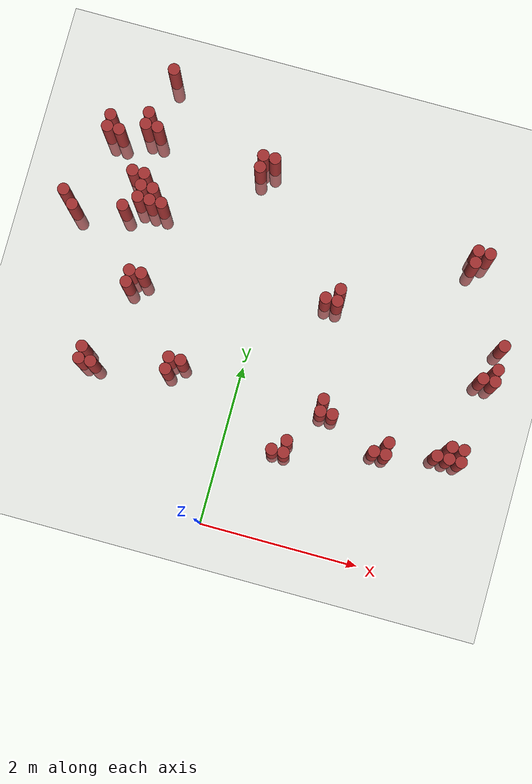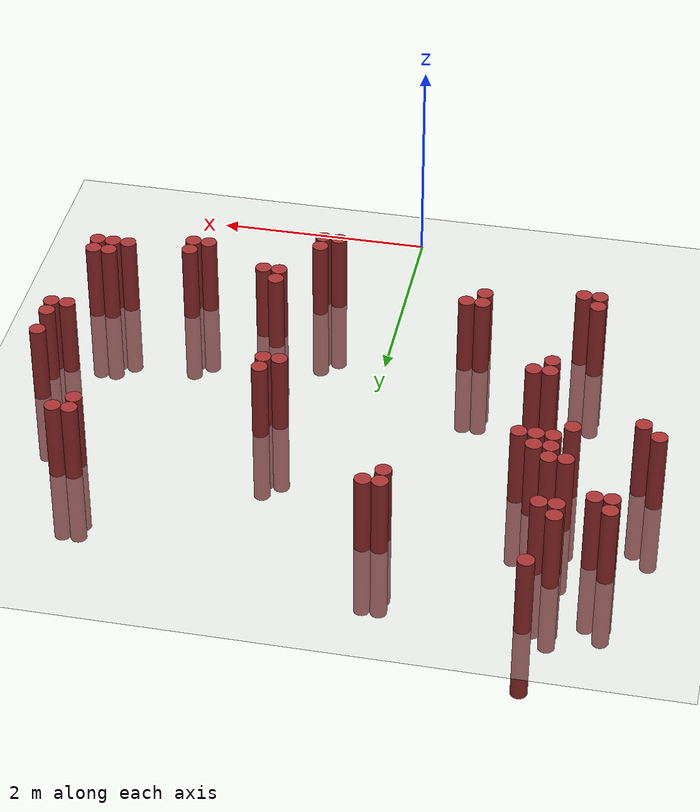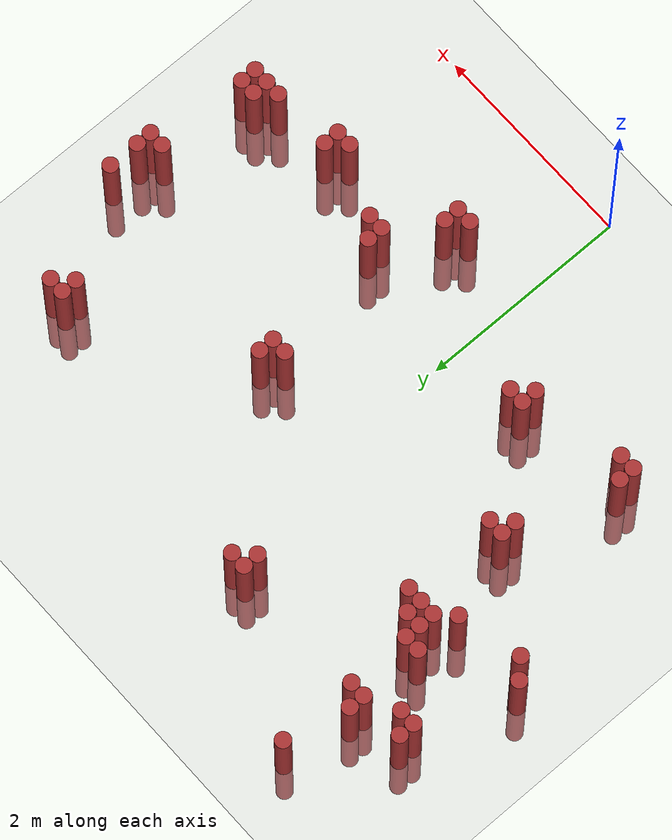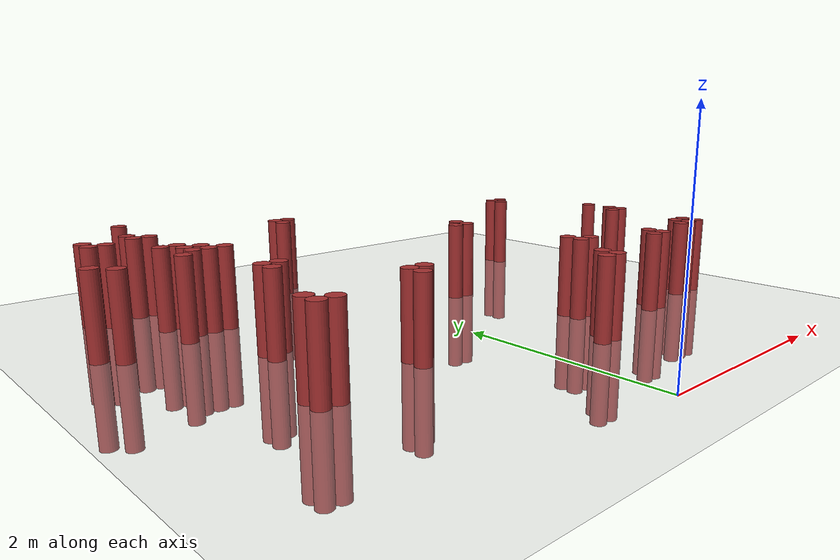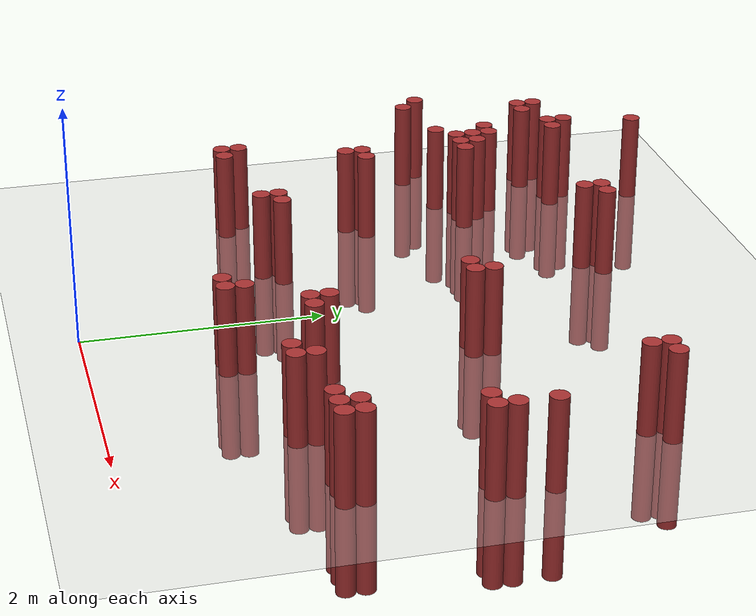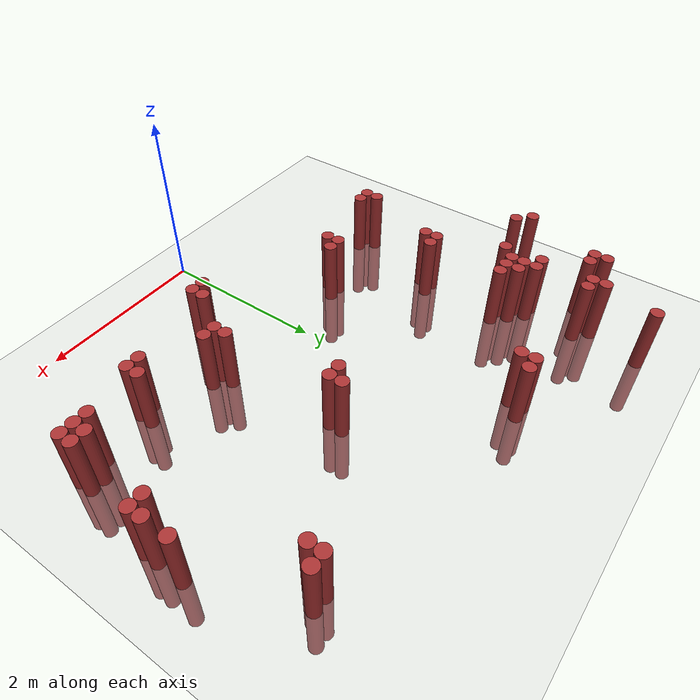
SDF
<sdf version="1.6">
 <world name="default">
  <model name="ground_plane">
   <static>1</static>
   <link name="link">
    <collision name="collision">
     <geometry><plane><normal>0 0 1</normal><size>100 100</size></plane></geometry>
     <surface><friction><ode><mu>100</mu><mu2>50</mu2></ode></friction></surface>
    </collision>
    <visual name="visual">
     <cast_shadows>0</cast_shadows>
     <geometry><plane><normal>0 0 1</normal><size>100 100</size></plane></geometry>
     <material>
      <script><uri>file://media/materials/scripts/gazebo.material</uri><name>Gazebo/Grey</name></script>
     </material>
    </visual>
   </link>
  </model>
  <model name="unit_cylinder_300">
   <static>1</static>
   <pose>-2.675000 3.475000 0.000000 0.000000 0.000000 0.000000</pose>
   <link name="link">
    <inertial>
     <mass>1</mass>
     <inertia><ixx>0.145833</ixx><ixy>0</ixy><ixz>0</ixz><iyy>0.145833</iyy><iyz>0</iyz><izz>0.125</izz></inertia>
    </inertial>
    <collision name="collision">
     <geometry><cylinder><radius>0.075000</radius><length>1.5</length></cylinder></geometry>
    </collision>
    <visual name="visual">
     <geometry><cylinder><radius>0.075000</radius><length>1.5</length></cylinder></geometry>
     <material>
      <ambient>0.648000 0.192000 0.192000 1</ambient>
      <diffuse>0.648000 0.192000 0.192000 1</diffuse>
     </material>
     <material>
      <script><name>Gazebo/Grey</name><uri>file://media/materials/scripts/gazebo.material</uri></script>
     </material>
    </visual>
   </link>
  </model>
  <model name="unit_cylinder_303">
   <static>1</static>
   <pose>-2.525000 3.325000 0.000000 0.000000 0.000000 0.000000</pose>
   <link name="link">
    <inertial>
     <mass>1</mass>
     <inertia><ixx>0.145833</ixx><ixy>0</ixy><ixz>0</ixz><iyy>0.145833</iyy><iyz>0</iyz><izz>0.125</izz></inertia>
    </inertial>
    <collision name="collision">
     <geometry><cylinder><radius>0.075000</radius><length>1.5</length></cylinder></geometry>
    </collision>
    <visual name="visual">
     <geometry><cylinder><radius>0.075000</radius><length>1.5</length></cylinder></geometry>
     <material>
      <ambient>0.648000 0.192000 0.192000 1</ambient>
      <diffuse>0.648000 0.192000 0.192000 1</diffuse>
     </material>
     <material>
      <script><name>Gazebo/Grey</name><uri>file://media/materials/scripts/gazebo.material</uri></script>
     </material>
    </visual>
   </link>
  </model>
  <model name="unit_cylinder_305">
   <static>1</static>
   <pose>-2.375000 4.375000 0.000000 0.000000 0.000000 0.000000</pose>
   <link name="link">
    <inertial>
     <mass>1</mass>
     <inertia><ixx>0.145833</ixx><ixy>0</ixy><ixz>0</ixz><iyy>0.145833</iyy><iyz>0</iyz><izz>0.125</izz></inertia>
    </inertial>
    <collision name="collision">
     <geometry><cylinder><radius>0.075000</radius><length>1.5</length></cylinder></geometry>
    </collision>
    <visual name="visual">
     <geometry><cylinder><radius>0.075000</radius><length>1.5</length></cylinder></geometry>
     <material>
      <ambient>0.648000 0.192000 0.192000 1</ambient>
      <diffuse>0.648000 0.192000 0.192000 1</diffuse>
     </material>
     <material>
      <script><name>Gazebo/Grey</name><uri>file://media/materials/scripts/gazebo.material</uri></script>
     </material>
    </visual>
   </link>
  </model>
  <model name="unit_cylinder_306">
   <static>1</static>
   <pose>-2.375000 4.525000 0.000000 0.000000 0.000000 0.000000</pose>
   <link name="link">
    <inertial>
     <mass>1</mass>
     <inertia><ixx>0.145833</ixx><ixy>0</ixy><ixz>0</ixz><iyy>0.145833</iyy><iyz>0</iyz><izz>0.125</izz></inertia>
    </inertial>
    <collision name="collision">
     <geometry><cylinder><radius>0.075000</radius><length>1.5</length></cylinder></geometry>
    </collision>
    <visual name="visual">
     <geometry><cylinder><radius>0.075000</radius><length>1.5</length></cylinder></geometry>
     <material>
      <ambient>0.648000 0.192000 0.192000 1</ambient>
      <diffuse>0.648000 0.192000 0.192000 1</diffuse>
     </material>
     <material>
      <script><name>Gazebo/Grey</name><uri>file://media/materials/scripts/gazebo.material</uri></script>
     </material>
    </visual>
   </link>
  </model>
  <model name="unit_cylinder_311">
   <static>1</static>
   <pose>-2.225000 4.375000 0.000000 0.000000 0.000000 0.000000</pose>
   <link name="link">
    <inertial>
     <mass>1</mass>
     <inertia><ixx>0.145833</ixx><ixy>0</ixy><ixz>0</ixz><iyy>0.145833</iyy><iyz>0</iyz><izz>0.125</izz></inertia>
    </inertial>
    <collision name="collision">
     <geometry><cylinder><radius>0.075000</radius><length>1.5</length></cylinder></geometry>
    </collision>
    <visual name="visual">
     <geometry><cylinder><radius>0.075000</radius><length>1.5</length></cylinder></geometry>
     <material>
      <ambient>0.648000 0.192000 0.192000 1</ambient>
      <diffuse>0.648000 0.192000 0.192000 1</diffuse>
     </material>
     <material>
      <script><name>Gazebo/Grey</name><uri>file://media/materials/scripts/gazebo.material</uri></script>
     </material>
    </visual>
   </link>
  </model>
  <model name="unit_cylinder_317">
   <static>1</static>
   <pose>-1.925000 1.525000 0.000000 0.000000 0.000000 0.000000</pose>
   <link name="link">
    <inertial>
     <mass>1</mass>
     <inertia><ixx>0.145833</ixx><ixy>0</ixy><ixz>0</ixz><iyy>0.145833</iyy><iyz>0</iyz><izz>0.125</izz></inertia>
    </inertial>
    <collision name="collision">
     <geometry><cylinder><radius>0.075000</radius><length>1.5</length></cylinder></geometry>
    </collision>
    <visual name="visual">
     <geometry><cylinder><radius>0.075000</radius><length>1.5</length></cylinder></geometry>
     <material>
      <ambient>0.648000 0.192000 0.192000 1</ambient>
      <diffuse>0.648000 0.192000 0.192000 1</diffuse>
     </material>
     <material>
      <script><name>Gazebo/Grey</name><uri>file://media/materials/scripts/gazebo.material</uri></script>
     </material>
    </visual>
   </link>
  </model>
  <model name="unit_cylinder_318">
   <static>1</static>
   <pose>-1.925000 1.675000 0.000000 0.000000 0.000000 0.000000</pose>
   <link name="link">
    <inertial>
     <mass>1</mass>
     <inertia><ixx>0.145833</ixx><ixy>0</ixy><ixz>0</ixz><iyy>0.145833</iyy><iyz>0</iyz><izz>0.125</izz></inertia>
    </inertial>
    <collision name="collision">
     <geometry><cylinder><radius>0.075000</radius><length>1.5</length></cylinder></geometry>
    </collision>
    <visual name="visual">
     <geometry><cylinder><radius>0.075000</radius><length>1.5</length></cylinder></geometry>
     <material>
      <ambient>0.648000 0.192000 0.192000 1</ambient>
      <diffuse>0.648000 0.192000 0.192000 1</diffuse>
     </material>
     <material>
      <script><name>Gazebo/Grey</name><uri>file://media/materials/scripts/gazebo.material</uri></script>
     </material>
    </visual>
   </link>
  </model>
  <model name="unit_cylinder_319">
   <static>1</static>
   <pose>-1.925000 3.475000 0.000000 0.000000 0.000000 0.000000</pose>
   <link name="link">
    <inertial>
     <mass>1</mass>
     <inertia><ixx>0.145833</ixx><ixy>0</ixy><ixz>0</ixz><iyy>0.145833</iyy><iyz>0</iyz><izz>0.125</izz></inertia>
    </inertial>
    <collision name="collision">
     <geometry><cylinder><radius>0.075000</radius><length>1.5</length></cylinder></geometry>
    </collision>
    <visual name="visual">
     <geometry><cylinder><radius>0.075000</radius><length>1.5</length></cylinder></geometry>
     <material>
      <ambient>0.648000 0.192000 0.192000 1</ambient>
      <diffuse>0.648000 0.192000 0.192000 1</diffuse>
     </material>
     <material>
      <script><name>Gazebo/Grey</name><uri>file://media/materials/scripts/gazebo.material</uri></script>
     </material>
    </visual>
   </link>
  </model>
  <model name="unit_cylinder_320">
   <static>1</static>
   <pose>-1.925000 3.925000 0.000000 0.000000 0.000000 0.000000</pose>
   <link name="link">
    <inertial>
     <mass>1</mass>
     <inertia><ixx>0.145833</ixx><ixy>0</ixy><ixz>0</ixz><iyy>0.145833</iyy><iyz>0</iyz><izz>0.125</izz></inertia>
    </inertial>
    <collision name="collision">
     <geometry><cylinder><radius>0.075000</radius><length>1.5</length></cylinder></geometry>
    </collision>
    <visual name="visual">
     <geometry><cylinder><radius>0.075000</radius><length>1.5</length></cylinder></geometry>
     <material>
      <ambient>0.648000 0.192000 0.192000 1</ambient>
      <diffuse>0.648000 0.192000 0.192000 1</diffuse>
     </material>
     <material>
      <script><name>Gazebo/Grey</name><uri>file://media/materials/scripts/gazebo.material</uri></script>
     </material>
    </visual>
   </link>
  </model>
  <model name="unit_cylinder_321">
   <static>1</static>
   <pose>-1.925000 4.525000 0.000000 0.000000 0.000000 0.000000</pose>
   <link name="link">
    <inertial>
     <mass>1</mass>
     <inertia><ixx>0.145833</ixx><ixy>0</ixy><ixz>0</ixz><iyy>0.145833</iyy><iyz>0</iyz><izz>0.125</izz></inertia>
    </inertial>
    <collision name="collision">
     <geometry><cylinder><radius>0.075000</radius><length>1.5</length></cylinder></geometry>
    </collision>
    <visual name="visual">
     <geometry><cylinder><radius>0.075000</radius><length>1.5</length></cylinder></geometry>
     <material>
      <ambient>0.648000 0.192000 0.192000 1</ambient>
      <diffuse>0.648000 0.192000 0.192000 1</diffuse>
     </material>
     <material>
      <script><name>Gazebo/Grey</name><uri>file://media/materials/scripts/gazebo.material</uri></script>
     </material>
    </visual>
   </link>
  </model>
  <model name="unit_cylinder_322">
   <static>1</static>
   <pose>-1.925000 4.675000 0.000000 0.000000 0.000000 0.000000</pose>
   <link name="link">
    <inertial>
     <mass>1</mass>
     <inertia><ixx>0.145833</ixx><ixy>0</ixy><ixz>0</ixz><iyy>0.145833</iyy><iyz>0</iyz><izz>0.125</izz></inertia>
    </inertial>
    <collision name="collision">
     <geometry><cylinder><radius>0.075000</radius><length>1.5</length></cylinder></geometry>
    </collision>
    <visual name="visual">
     <geometry><cylinder><radius>0.075000</radius><length>1.5</length></cylinder></geometry>
     <material>
      <ambient>0.648000 0.192000 0.192000 1</ambient>
      <diffuse>0.648000 0.192000 0.192000 1</diffuse>
     </material>
     <material>
      <script><name>Gazebo/Grey</name><uri>file://media/materials/scripts/gazebo.material</uri></script>
     </material>
    </visual>
   </link>
  </model>
  <model name="unit_cylinder_325">
   <static>1</static>
   <pose>-1.775000 1.525000 0.000000 0.000000 0.000000 0.000000</pose>
   <link name="link">
    <inertial>
     <mass>1</mass>
     <inertia><ixx>0.145833</ixx><ixy>0</ixy><ixz>0</ixz><iyy>0.145833</iyy><iyz>0</iyz><izz>0.125</izz></inertia>
    </inertial>
    <collision name="collision">
     <geometry><cylinder><radius>0.075000</radius><length>1.5</length></cylinder></geometry>
    </collision>
    <visual name="visual">
     <geometry><cylinder><radius>0.075000</radius><length>1.5</length></cylinder></geometry>
     <material>
      <ambient>0.648000 0.192000 0.192000 1</ambient>
      <diffuse>0.648000 0.192000 0.192000 1</diffuse>
     </material>
     <material>
      <script><name>Gazebo/Grey</name><uri>file://media/materials/scripts/gazebo.material</uri></script>
     </material>
    </visual>
   </link>
  </model>
  <model name="unit_cylinder_326">
   <static>1</static>
   <pose>-1.775000 3.625000 0.000000 0.000000 0.000000 0.000000</pose>
   <link name="link">
    <inertial>
     <mass>1</mass>
     <inertia><ixx>0.145833</ixx><ixy>0</ixy><ixz>0</ixz><iyy>0.145833</iyy><iyz>0</iyz><izz>0.125</izz></inertia>
    </inertial>
    <collision name="collision">
     <geometry><cylinder><radius>0.075000</radius><length>1.5</length></cylinder></geometry>
    </collision>
    <visual name="visual">
     <geometry><cylinder><radius>0.075000</radius><length>1.5</length></cylinder></geometry>
     <material>
      <ambient>0.648000 0.192000 0.192000 1</ambient>
      <diffuse>0.648000 0.192000 0.192000 1</diffuse>
     </material>
     <material>
      <script><name>Gazebo/Grey</name><uri>file://media/materials/scripts/gazebo.material</uri></script>
     </material>
    </visual>
   </link>
  </model>
  <model name="unit_cylinder_327">
   <static>1</static>
   <pose>-1.775000 3.775000 0.000000 0.000000 0.000000 0.000000</pose>
   <link name="link">
    <inertial>
     <mass>1</mass>
     <inertia><ixx>0.145833</ixx><ixy>0</ixy><ixz>0</ixz><iyy>0.145833</iyy><iyz>0</iyz><izz>0.125</izz></inertia>
    </inertial>
    <collision name="collision">
     <geometry><cylinder><radius>0.075000</radius><length>1.5</length></cylinder></geometry>
    </collision>
    <visual name="visual">
     <geometry><cylinder><radius>0.075000</radius><length>1.5</length></cylinder></geometry>
     <material>
      <ambient>0.648000 0.192000 0.192000 1</ambient>
      <diffuse>0.648000 0.192000 0.192000 1</diffuse>
     </material>
     <material>
      <script><name>Gazebo/Grey</name><uri>file://media/materials/scripts/gazebo.material</uri></script>
     </material>
    </visual>
   </link>
  </model>
  <model name="unit_cylinder_328">
   <static>1</static>
   <pose>-1.775000 3.925000 0.000000 0.000000 0.000000 0.000000</pose>
   <link name="link">
    <inertial>
     <mass>1</mass>
     <inertia><ixx>0.145833</ixx><ixy>0</ixy><ixz>0</ixz><iyy>0.145833</iyy><iyz>0</iyz><izz>0.125</izz></inertia>
    </inertial>
    <collision name="collision">
     <geometry><cylinder><radius>0.075000</radius><length>1.5</length></cylinder></geometry>
    </collision>
    <visual name="visual">
     <geometry><cylinder><radius>0.075000</radius><length>1.5</length></cylinder></geometry>
     <material>
      <ambient>0.648000 0.192000 0.192000 1</ambient>
      <diffuse>0.648000 0.192000 0.192000 1</diffuse>
     </material>
     <material>
      <script><name>Gazebo/Grey</name><uri>file://media/materials/scripts/gazebo.material</uri></script>
     </material>
    </visual>
   </link>
  </model>
  <model name="unit_cylinder_329">
   <static>1</static>
   <pose>-1.775000 4.525000 0.000000 0.000000 0.000000 0.000000</pose>
   <link name="link">
    <inertial>
     <mass>1</mass>
     <inertia><ixx>0.145833</ixx><ixy>0</ixy><ixz>0</ixz><iyy>0.145833</iyy><iyz>0</iyz><izz>0.125</izz></inertia>
    </inertial>
    <collision name="collision">
     <geometry><cylinder><radius>0.075000</radius><length>1.5</length></cylinder></geometry>
    </collision>
    <visual name="visual">
     <geometry><cylinder><radius>0.075000</radius><length>1.5</length></cylinder></geometry>
     <material>
      <ambient>0.648000 0.192000 0.192000 1</ambient>
      <diffuse>0.648000 0.192000 0.192000 1</diffuse>
     </material>
     <material>
      <script><name>Gazebo/Grey</name><uri>file://media/materials/scripts/gazebo.material</uri></script>
     </material>
    </visual>
   </link>
  </model>
  <model name="unit_cylinder_330">
   <static>1</static>
   <pose>-1.775000 5.275000 0.000000 0.000000 0.000000 0.000000</pose>
   <link name="link">
    <inertial>
     <mass>1</mass>
     <inertia><ixx>0.145833</ixx><ixy>0</ixy><ixz>0</ixz><iyy>0.145833</iyy><iyz>0</iyz><izz>0.125</izz></inertia>
    </inertial>
    <collision name="collision">
     <geometry><cylinder><radius>0.075000</radius><length>1.5</length></cylinder></geometry>
    </collision>
    <visual name="visual">
     <geometry><cylinder><radius>0.075000</radius><length>1.5</length></cylinder></geometry>
     <material>
      <ambient>0.648000 0.192000 0.192000 1</ambient>
      <diffuse>0.648000 0.192000 0.192000 1</diffuse>
     </material>
     <material>
      <script><name>Gazebo/Grey</name><uri>file://media/materials/scripts/gazebo.material</uri></script>
     </material>
    </visual>
   </link>
  </model>
  <model name="unit_cylinder_331">
   <static>1</static>
   <pose>-1.625000 2.575000 0.000000 0.000000 0.000000 0.000000</pose>
   <link name="link">
    <inertial>
     <mass>1</mass>
     <inertia><ixx>0.145833</ixx><ixy>0</ixy><ixz>0</ixz><iyy>0.145833</iyy><iyz>0</iyz><izz>0.125</izz></inertia>
    </inertial>
    <collision name="collision">
     <geometry><cylinder><radius>0.075000</radius><length>1.5</length></cylinder></geometry>
    </collision>
    <visual name="visual">
     <geometry><cylinder><radius>0.075000</radius><length>1.5</length></cylinder></geometry>
     <material>
      <ambient>0.648000 0.192000 0.192000 1</ambient>
      <diffuse>0.648000 0.192000 0.192000 1</diffuse>
     </material>
     <material>
      <script><name>Gazebo/Grey</name><uri>file://media/materials/scripts/gazebo.material</uri></script>
     </material>
    </visual>
   </link>
  </model>
  <model name="unit_cylinder_332">
   <static>1</static>
   <pose>-1.625000 2.725000 0.000000 0.000000 0.000000 0.000000</pose>
   <link name="link">
    <inertial>
     <mass>1</mass>
     <inertia><ixx>0.145833</ixx><ixy>0</ixy><ixz>0</ixz><iyy>0.145833</iyy><iyz>0</iyz><izz>0.125</izz></inertia>
    </inertial>
    <collision name="collision">
     <geometry><cylinder><radius>0.075000</radius><length>1.5</length></cylinder></geometry>
    </collision>
    <visual name="visual">
     <geometry><cylinder><radius>0.075000</radius><length>1.5</length></cylinder></geometry>
     <material>
      <ambient>0.648000 0.192000 0.192000 1</ambient>
      <diffuse>0.648000 0.192000 0.192000 1</diffuse>
     </material>
     <material>
      <script><name>Gazebo/Grey</name><uri>file://media/materials/scripts/gazebo.material</uri></script>
     </material>
    </visual>
   </link>
  </model>
  <model name="unit_cylinder_333">
   <static>1</static>
   <pose>-1.625000 3.625000 0.000000 0.000000 0.000000 0.000000</pose>
   <link name="link">
    <inertial>
     <mass>1</mass>
     <inertia><ixx>0.145833</ixx><ixy>0</ixy><ixz>0</ixz><iyy>0.145833</iyy><iyz>0</iyz><izz>0.125</izz></inertia>
    </inertial>
    <collision name="collision">
     <geometry><cylinder><radius>0.075000</radius><length>1.5</length></cylinder></geometry>
    </collision>
    <visual name="visual">
     <geometry><cylinder><radius>0.075000</radius><length>1.5</length></cylinder></geometry>
     <material>
      <ambient>0.648000 0.192000 0.192000 1</ambient>
      <diffuse>0.648000 0.192000 0.192000 1</diffuse>
     </material>
     <material>
      <script><name>Gazebo/Grey</name><uri>file://media/materials/scripts/gazebo.material</uri></script>
     </material>
    </visual>
   </link>
  </model>
  <model name="unit_cylinder_334">
   <static>1</static>
   <pose>-1.625000 3.775000 0.000000 0.000000 0.000000 0.000000</pose>
   <link name="link">
    <inertial>
     <mass>1</mass>
     <inertia><ixx>0.145833</ixx><ixy>0</ixy><ixz>0</ixz><iyy>0.145833</iyy><iyz>0</iyz><izz>0.125</izz></inertia>
    </inertial>
    <collision name="collision">
     <geometry><cylinder><radius>0.075000</radius><length>1.5</length></cylinder></geometry>
    </collision>
    <visual name="visual">
     <geometry><cylinder><radius>0.075000</radius><length>1.5</length></cylinder></geometry>
     <material>
      <ambient>0.648000 0.192000 0.192000 1</ambient>
      <diffuse>0.648000 0.192000 0.192000 1</diffuse>
     </material>
     <material>
      <script><name>Gazebo/Grey</name><uri>file://media/materials/scripts/gazebo.material</uri></script>
     </material>
    </visual>
   </link>
  </model>
  <model name="unit_cylinder_336">
   <static>1</static>
   <pose>-1.475000 2.725000 0.000000 0.000000 0.000000 0.000000</pose>
   <link name="link">
    <inertial>
     <mass>1</mass>
     <inertia><ixx>0.145833</ixx><ixy>0</ixy><ixz>0</ixz><iyy>0.145833</iyy><iyz>0</iyz><izz>0.125</izz></inertia>
    </inertial>
    <collision name="collision">
     <geometry><cylinder><radius>0.075000</radius><length>1.5</length></cylinder></geometry>
    </collision>
    <visual name="visual">
     <geometry><cylinder><radius>0.075000</radius><length>1.5</length></cylinder></geometry>
     <material>
      <ambient>0.648000 0.192000 0.192000 1</ambient>
      <diffuse>0.648000 0.192000 0.192000 1</diffuse>
     </material>
     <material>
      <script><name>Gazebo/Grey</name><uri>file://media/materials/scripts/gazebo.material</uri></script>
     </material>
    </visual>
   </link>
  </model>
  <model name="unit_cylinder_337">
   <static>1</static>
   <pose>-1.475000 3.625000 0.000000 0.000000 0.000000 0.000000</pose>
   <link name="link">
    <inertial>
     <mass>1</mass>
     <inertia><ixx>0.145833</ixx><ixy>0</ixy><ixz>0</ixz><iyy>0.145833</iyy><iyz>0</iyz><izz>0.125</izz></inertia>
    </inertial>
    <collision name="collision">
     <geometry><cylinder><radius>0.075000</radius><length>1.5</length></cylinder></geometry>
    </collision>
    <visual name="visual">
     <geometry><cylinder><radius>0.075000</radius><length>1.5</length></cylinder></geometry>
     <material>
      <ambient>0.648000 0.192000 0.192000 1</ambient>
      <diffuse>0.648000 0.192000 0.192000 1</diffuse>
     </material>
     <material>
      <script><name>Gazebo/Grey</name><uri>file://media/materials/scripts/gazebo.material</uri></script>
     </material>
    </visual>
   </link>
  </model>
  <model name="unit_cylinder_345">
   <static>1</static>
   <pose>-0.875000 1.675000 0.000000 0.000000 0.000000 0.000000</pose>
   <link name="link">
    <inertial>
     <mass>1</mass>
     <inertia><ixx>0.145833</ixx><ixy>0</ixy><ixz>0</ixz><iyy>0.145833</iyy><iyz>0</iyz><izz>0.125</izz></inertia>
    </inertial>
    <collision name="collision">
     <geometry><cylinder><radius>0.075000</radius><length>1.5</length></cylinder></geometry>
    </collision>
    <visual name="visual">
     <geometry><cylinder><radius>0.075000</radius><length>1.5</length></cylinder></geometry>
     <material>
      <ambient>0.648000 0.192000 0.192000 1</ambient>
      <diffuse>0.648000 0.192000 0.192000 1</diffuse>
     </material>
     <material>
      <script><name>Gazebo/Grey</name><uri>file://media/materials/scripts/gazebo.material</uri></script>
     </material>
    </visual>
   </link>
  </model>
  <model name="unit_cylinder_346">
   <static>1</static>
   <pose>-0.875000 1.825000 0.000000 0.000000 0.000000 0.000000</pose>
   <link name="link">
    <inertial>
     <mass>1</mass>
     <inertia><ixx>0.145833</ixx><ixy>0</ixy><ixz>0</ixz><iyy>0.145833</iyy><iyz>0</iyz><izz>0.125</izz></inertia>
    </inertial>
    <collision name="collision">
     <geometry><cylinder><radius>0.075000</radius><length>1.5</length></cylinder></geometry>
    </collision>
    <visual name="visual">
     <geometry><cylinder><radius>0.075000</radius><length>1.5</length></cylinder></geometry>
     <material>
      <ambient>0.648000 0.192000 0.192000 1</ambient>
      <diffuse>0.648000 0.192000 0.192000 1</diffuse>
     </material>
     <material>
      <script><name>Gazebo/Grey</name><uri>file://media/materials/scripts/gazebo.material</uri></script>
     </material>
    </visual>
   </link>
  </model>
  <model name="unit_cylinder_349">
   <static>1</static>
   <pose>-0.725000 1.825000 0.000000 0.000000 0.000000 0.000000</pose>
   <link name="link">
    <inertial>
     <mass>1</mass>
     <inertia><ixx>0.145833</ixx><ixy>0</ixy><ixz>0</ixz><iyy>0.145833</iyy><iyz>0</iyz><izz>0.125</izz></inertia>
    </inertial>
    <collision name="collision">
     <geometry><cylinder><radius>0.075000</radius><length>1.5</length></cylinder></geometry>
    </collision>
    <visual name="visual">
     <geometry><cylinder><radius>0.075000</radius><length>1.5</length></cylinder></geometry>
     <material>
      <ambient>0.648000 0.192000 0.192000 1</ambient>
      <diffuse>0.648000 0.192000 0.192000 1</diffuse>
     </material>
     <material>
      <script><name>Gazebo/Grey</name><uri>file://media/materials/scripts/gazebo.material</uri></script>
     </material>
    </visual>
   </link>
  </model>
  <model name="unit_cylinder_351">
   <static>1</static>
   <pose>-0.425000 4.375000 0.000000 0.000000 0.000000 0.000000</pose>
   <link name="link">
    <inertial>
     <mass>1</mass>
     <inertia><ixx>0.145833</ixx><ixy>0</ixy><ixz>0</ixz><iyy>0.145833</iyy><iyz>0</iyz><izz>0.125</izz></inertia>
    </inertial>
    <collision name="collision">
     <geometry><cylinder><radius>0.075000</radius><length>1.5</length></cylinder></geometry>
    </collision>
    <visual name="visual">
     <geometry><cylinder><radius>0.075000</radius><length>1.5</length></cylinder></geometry>
     <material>
      <ambient>0.648000 0.192000 0.192000 1</ambient>
      <diffuse>0.648000 0.192000 0.192000 1</diffuse>
     </material>
     <material>
      <script><name>Gazebo/Grey</name><uri>file://media/materials/scripts/gazebo.material</uri></script>
     </material>
    </visual>
   </link>
  </model>
  <model name="unit_cylinder_352">
   <static>1</static>
   <pose>-0.425000 4.525000 0.000000 0.000000 0.000000 0.000000</pose>
   <link name="link">
    <inertial>
     <mass>1</mass>
     <inertia><ixx>0.145833</ixx><ixy>0</ixy><ixz>0</ixz><iyy>0.145833</iyy><iyz>0</iyz><izz>0.125</izz></inertia>
    </inertial>
    <collision name="collision">
     <geometry><cylinder><radius>0.075000</radius><length>1.5</length></cylinder></geometry>
    </collision>
    <visual name="visual">
     <geometry><cylinder><radius>0.075000</radius><length>1.5</length></cylinder></geometry>
     <material>
      <ambient>0.648000 0.192000 0.192000 1</ambient>
      <diffuse>0.648000 0.192000 0.192000 1</diffuse>
     </material>
     <material>
      <script><name>Gazebo/Grey</name><uri>file://media/materials/scripts/gazebo.material</uri></script>
     </material>
    </visual>
   </link>
  </model>
  <model name="unit_cylinder_353">
   <static>1</static>
   <pose>-0.275000 4.525000 0.000000 0.000000 0.000000 0.000000</pose>
   <link name="link">
    <inertial>
     <mass>1</mass>
     <inertia><ixx>0.145833</ixx><ixy>0</ixy><ixz>0</ixz><iyy>0.145833</iyy><iyz>0</iyz><izz>0.125</izz></inertia>
    </inertial>
    <collision name="collision">
     <geometry><cylinder><radius>0.075000</radius><length>1.5</length></cylinder></geometry>
    </collision>
    <visual name="visual">
     <geometry><cylinder><radius>0.075000</radius><length>1.5</length></cylinder></geometry>
     <material>
      <ambient>0.648000 0.192000 0.192000 1</ambient>
      <diffuse>0.648000 0.192000 0.192000 1</diffuse>
     </material>
     <material>
      <script><name>Gazebo/Grey</name><uri>file://media/materials/scripts/gazebo.material</uri></script>
     </material>
    </visual>
   </link>
  </model>
  <model name="unit_cylinder_354">
   <static>1</static>
   <pose>0.625000 1.075000 0.000000 0.000000 0.000000 0.000000</pose>
   <link name="link">
    <inertial>
     <mass>1</mass>
     <inertia><ixx>0.145833</ixx><ixy>0</ixy><ixz>0</ixz><iyy>0.145833</iyy><iyz>0</iyz><izz>0.125</izz></inertia>
    </inertial>
    <collision name="collision">
     <geometry><cylinder><radius>0.075000</radius><length>1.5</length></cylinder></geometry>
    </collision>
    <visual name="visual">
     <geometry><cylinder><radius>0.075000</radius><length>1.5</length></cylinder></geometry>
     <material>
      <ambient>0.648000 0.192000 0.192000 1</ambient>
      <diffuse>0.648000 0.192000 0.192000 1</diffuse>
     </material>
     <material>
      <script><name>Gazebo/Grey</name><uri>file://media/materials/scripts/gazebo.material</uri></script>
     </material>
    </visual>
   </link>
  </model>
  <model name="unit_cylinder_355">
   <static>1</static>
   <pose>0.775000 1.075000 0.000000 0.000000 0.000000 0.000000</pose>
   <link name="link">
    <inertial>
     <mass>1</mass>
     <inertia><ixx>0.145833</ixx><ixy>0</ixy><ixz>0</ixz><iyy>0.145833</iyy><iyz>0</iyz><izz>0.125</izz></inertia>
    </inertial>
    <collision name="collision">
     <geometry><cylinder><radius>0.075000</radius><length>1.5</length></cylinder></geometry>
    </collision>
    <visual name="visual">
     <geometry><cylinder><radius>0.075000</radius><length>1.5</length></cylinder></geometry>
     <material>
      <ambient>0.648000 0.192000 0.192000 1</ambient>
      <diffuse>0.648000 0.192000 0.192000 1</diffuse>
     </material>
     <material>
      <script><name>Gazebo/Grey</name><uri>file://media/materials/scripts/gazebo.material</uri></script>
     </material>
    </visual>
   </link>
  </model>
  <model name="unit_cylinder_356">
   <static>1</static>
   <pose>0.775000 1.225000 0.000000 0.000000 0.000000 0.000000</pose>
   <link name="link">
    <inertial>
     <mass>1</mass>
     <inertia><ixx>0.145833</ixx><ixy>0</ixy><ixz>0</ixz><iyy>0.145833</iyy><iyz>0</iyz><izz>0.125</izz></inertia>
    </inertial>
    <collision name="collision">
     <geometry><cylinder><radius>0.075000</radius><length>1.5</length></cylinder></geometry>
    </collision>
    <visual name="visual">
     <geometry><cylinder><radius>0.075000</radius><length>1.5</length></cylinder></geometry>
     <material>
      <ambient>0.648000 0.192000 0.192000 1</ambient>
      <diffuse>0.648000 0.192000 0.192000 1</diffuse>
     </material>
     <material>
      <script><name>Gazebo/Grey</name><uri>file://media/materials/scripts/gazebo.material</uri></script>
     </material>
    </visual>
   </link>
  </model>
  <model name="unit_cylinder_357">
   <static>1</static>
   <pose>0.775000 3.025000 0.000000 0.000000 0.000000 0.000000</pose>
   <link name="link">
    <inertial>
     <mass>1</mass>
     <inertia><ixx>0.145833</ixx><ixy>0</ixy><ixz>0</ixz><iyy>0.145833</iyy><iyz>0</iyz><izz>0.125</izz></inertia>
    </inertial>
    <collision name="collision">
     <geometry><cylinder><radius>0.075000</radius><length>1.5</length></cylinder></geometry>
    </collision>
    <visual name="visual">
     <geometry><cylinder><radius>0.075000</radius><length>1.5</length></cylinder></geometry>
     <material>
      <ambient>0.648000 0.192000 0.192000 1</ambient>
      <diffuse>0.648000 0.192000 0.192000 1</diffuse>
     </material>
     <material>
      <script><name>Gazebo/Grey</name><uri>file://media/materials/scripts/gazebo.material</uri></script>
     </material>
    </visual>
   </link>
  </model>
  <model name="unit_cylinder_358">
   <static>1</static>
   <pose>0.925000 3.025000 0.000000 0.000000 0.000000 0.000000</pose>
   <link name="link">
    <inertial>
     <mass>1</mass>
     <inertia><ixx>0.145833</ixx><ixy>0</ixy><ixz>0</ixz><iyy>0.145833</iyy><iyz>0</iyz><izz>0.125</izz></inertia>
    </inertial>
    <collision name="collision">
     <geometry><cylinder><radius>0.075000</radius><length>1.5</length></cylinder></geometry>
    </collision>
    <visual name="visual">
     <geometry><cylinder><radius>0.075000</radius><length>1.5</length></cylinder></geometry>
     <material>
      <ambient>0.648000 0.192000 0.192000 1</ambient>
      <diffuse>0.648000 0.192000 0.192000 1</diffuse>
     </material>
     <material>
      <script><name>Gazebo/Grey</name><uri>file://media/materials/scripts/gazebo.material</uri></script>
     </material>
    </visual>
   </link>
  </model>
  <model name="unit_cylinder_359">
   <static>1</static>
   <pose>0.925000 3.175000 0.000000 0.000000 0.000000 0.000000</pose>
   <link name="link">
    <inertial>
     <mass>1</mass>
     <inertia><ixx>0.145833</ixx><ixy>0</ixy><ixz>0</ixz><iyy>0.145833</iyy><iyz>0</iyz><izz>0.125</izz></inertia>
    </inertial>
    <collision name="collision">
     <geometry><cylinder><radius>0.075000</radius><length>1.5</length></cylinder></geometry>
    </collision>
    <visual name="visual">
     <geometry><cylinder><radius>0.075000</radius><length>1.5</length></cylinder></geometry>
     <material>
      <ambient>0.648000 0.192000 0.192000 1</ambient>
      <diffuse>0.648000 0.192000 0.192000 1</diffuse>
     </material>
     <material>
      <script><name>Gazebo/Grey</name><uri>file://media/materials/scripts/gazebo.material</uri></script>
     </material>
    </visual>
   </link>
  </model>
  <model name="unit_cylinder_360">
   <static>1</static>
   <pose>1.075000 1.675000 0.000000 0.000000 0.000000 0.000000</pose>
   <link name="link">
    <inertial>
     <mass>1</mass>
     <inertia><ixx>0.145833</ixx><ixy>0</ixy><ixz>0</ixz><iyy>0.145833</iyy><iyz>0</iyz><izz>0.125</izz></inertia>
    </inertial>
    <collision name="collision">
     <geometry><cylinder><radius>0.075000</radius><length>1.5</length></cylinder></geometry>
    </collision>
    <visual name="visual">
     <geometry><cylinder><radius>0.075000</radius><length>1.5</length></cylinder></geometry>
     <material>
      <ambient>0.648000 0.192000 0.192000 1</ambient>
      <diffuse>0.648000 0.192000 0.192000 1</diffuse>
     </material>
     <material>
      <script><name>Gazebo/Grey</name><uri>file://media/materials/scripts/gazebo.material</uri></script>
     </material>
    </visual>
   </link>
  </model>
  <model name="unit_cylinder_361">
   <static>1</static>
   <pose>1.075000 1.825000 0.000000 0.000000 0.000000 0.000000</pose>
   <link name="link">
    <inertial>
     <mass>1</mass>
     <inertia><ixx>0.145833</ixx><ixy>0</ixy><ixz>0</ixz><iyy>0.145833</iyy><iyz>0</iyz><izz>0.125</izz></inertia>
    </inertial>
    <collision name="collision">
     <geometry><cylinder><radius>0.075000</radius><length>1.5</length></cylinder></geometry>
    </collision>
    <visual name="visual">
     <geometry><cylinder><radius>0.075000</radius><length>1.5</length></cylinder></geometry>
     <material>
      <ambient>0.648000 0.192000 0.192000 1</ambient>
      <diffuse>0.648000 0.192000 0.192000 1</diffuse>
     </material>
     <material>
      <script><name>Gazebo/Grey</name><uri>file://media/materials/scripts/gazebo.material</uri></script>
     </material>
    </visual>
   </link>
  </model>
  <model name="unit_cylinder_362">
   <static>1</static>
   <pose>1.225000 1.675000 0.000000 0.000000 0.000000 0.000000</pose>
   <link name="link">
    <inertial>
     <mass>1</mass>
     <inertia><ixx>0.145833</ixx><ixy>0</ixy><ixz>0</ixz><iyy>0.145833</iyy><iyz>0</iyz><izz>0.125</izz></inertia>
    </inertial>
    <collision name="collision">
     <geometry><cylinder><radius>0.075000</radius><length>1.5</length></cylinder></geometry>
    </collision>
    <visual name="visual">
     <geometry><cylinder><radius>0.075000</radius><length>1.5</length></cylinder></geometry>
     <material>
      <ambient>0.648000 0.192000 0.192000 1</ambient>
      <diffuse>0.648000 0.192000 0.192000 1</diffuse>
     </material>
     <material>
      <script><name>Gazebo/Grey</name><uri>file://media/materials/scripts/gazebo.material</uri></script>
     </material>
    </visual>
   </link>
  </model>
  <model name="unit_cylinder_366">
   <static>1</static>
   <pose>1.825000 1.375000 0.000000 0.000000 0.000000 0.000000</pose>
   <link name="link">
    <inertial>
     <mass>1</mass>
     <inertia><ixx>0.145833</ixx><ixy>0</ixy><ixz>0</ixz><iyy>0.145833</iyy><iyz>0</iyz><izz>0.125</izz></inertia>
    </inertial>
    <collision name="collision">
     <geometry><cylinder><radius>0.075000</radius><length>1.5</length></cylinder></geometry>
    </collision>
    <visual name="visual">
     <geometry><cylinder><radius>0.075000</radius><length>1.5</length></cylinder></geometry>
     <material>
      <ambient>0.648000 0.192000 0.192000 1</ambient>
      <diffuse>0.648000 0.192000 0.192000 1</diffuse>
     </material>
     <material>
      <script><name>Gazebo/Grey</name><uri>file://media/materials/scripts/gazebo.material</uri></script>
     </material>
    </visual>
   </link>
  </model>
  <model name="unit_cylinder_367">
   <static>1</static>
   <pose>1.975000 1.375000 0.000000 0.000000 0.000000 0.000000</pose>
   <link name="link">
    <inertial>
     <mass>1</mass>
     <inertia><ixx>0.145833</ixx><ixy>0</ixy><ixz>0</ixz><iyy>0.145833</iyy><iyz>0</iyz><izz>0.125</izz></inertia>
    </inertial>
    <collision name="collision">
     <geometry><cylinder><radius>0.075000</radius><length>1.5</length></cylinder></geometry>
    </collision>
    <visual name="visual">
     <geometry><cylinder><radius>0.075000</radius><length>1.5</length></cylinder></geometry>
     <material>
      <ambient>0.648000 0.192000 0.192000 1</ambient>
      <diffuse>0.648000 0.192000 0.192000 1</diffuse>
     </material>
     <material>
      <script><name>Gazebo/Grey</name><uri>file://media/materials/scripts/gazebo.material</uri></script>
     </material>
    </visual>
   </link>
  </model>
  <model name="unit_cylinder_368">
   <static>1</static>
   <pose>1.975000 1.525000 0.000000 0.000000 0.000000 0.000000</pose>
   <link name="link">
    <inertial>
     <mass>1</mass>
     <inertia><ixx>0.145833</ixx><ixy>0</ixy><ixz>0</ixz><iyy>0.145833</iyy><iyz>0</iyz><izz>0.125</izz></inertia>
    </inertial>
    <collision name="collision">
     <geometry><cylinder><radius>0.075000</radius><length>1.5</length></cylinder></geometry>
    </collision>
    <visual name="visual">
     <geometry><cylinder><radius>0.075000</radius><length>1.5</length></cylinder></geometry>
     <material>
      <ambient>0.648000 0.192000 0.192000 1</ambient>
      <diffuse>0.648000 0.192000 0.192000 1</diffuse>
     </material>
     <material>
      <script><name>Gazebo/Grey</name><uri>file://media/materials/scripts/gazebo.material</uri></script>
     </material>
    </visual>
   </link>
  </model>
  <model name="unit_cylinder_369">
   <static>1</static>
   <pose>2.425000 3.925000 0.000000 0.000000 0.000000 0.000000</pose>
   <link name="link">
    <inertial>
     <mass>1</mass>
     <inertia><ixx>0.145833</ixx><ixy>0</ixy><ixz>0</ixz><iyy>0.145833</iyy><iyz>0</iyz><izz>0.125</izz></inertia>
    </inertial>
    <collision name="collision">
     <geometry><cylinder><radius>0.075000</radius><length>1.5</length></cylinder></geometry>
    </collision>
    <visual name="visual">
     <geometry><cylinder><radius>0.075000</radius><length>1.5</length></cylinder></geometry>
     <material>
      <ambient>0.648000 0.192000 0.192000 1</ambient>
      <diffuse>0.648000 0.192000 0.192000 1</diffuse>
     </material>
     <material>
      <script><name>Gazebo/Grey</name><uri>file://media/materials/scripts/gazebo.material</uri></script>
     </material>
    </visual>
   </link>
  </model>
  <model name="unit_cylinder_370">
   <static>1</static>
   <pose>2.425000 4.075000 0.000000 0.000000 0.000000 0.000000</pose>
   <link name="link">
    <inertial>
     <mass>1</mass>
     <inertia><ixx>0.145833</ixx><ixy>0</ixy><ixz>0</ixz><iyy>0.145833</iyy><iyz>0</iyz><izz>0.125</izz></inertia>
    </inertial>
    <collision name="collision">
     <geometry><cylinder><radius>0.075000</radius><length>1.5</length></cylinder></geometry>
    </collision>
    <visual name="visual">
     <geometry><cylinder><radius>0.075000</radius><length>1.5</length></cylinder></geometry>
     <material>
      <ambient>0.648000 0.192000 0.192000 1</ambient>
      <diffuse>0.648000 0.192000 0.192000 1</diffuse>
     </material>
     <material>
      <script><name>Gazebo/Grey</name><uri>file://media/materials/scripts/gazebo.material</uri></script>
     </material>
    </visual>
   </link>
  </model>
  <model name="unit_cylinder_372">
   <static>1</static>
   <pose>2.575000 1.525000 0.000000 0.000000 0.000000 0.000000</pose>
   <link name="link">
    <inertial>
     <mass>1</mass>
     <inertia><ixx>0.145833</ixx><ixy>0</ixy><ixz>0</ixz><iyy>0.145833</iyy><iyz>0</iyz><izz>0.125</izz></inertia>
    </inertial>
    <collision name="collision">
     <geometry><cylinder><radius>0.075000</radius><length>1.5</length></cylinder></geometry>
    </collision>
    <visual name="visual">
     <geometry><cylinder><radius>0.075000</radius><length>1.5</length></cylinder></geometry>
     <material>
      <ambient>0.648000 0.192000 0.192000 1</ambient>
      <diffuse>0.648000 0.192000 0.192000 1</diffuse>
     </material>
     <material>
      <script><name>Gazebo/Grey</name><uri>file://media/materials/scripts/gazebo.material</uri></script>
     </material>
    </visual>
   </link>
  </model>
  <model name="unit_cylinder_373">
   <static>1</static>
   <pose>2.575000 4.075000 0.000000 0.000000 0.000000 0.000000</pose>
   <link name="link">
    <inertial>
     <mass>1</mass>
     <inertia><ixx>0.145833</ixx><ixy>0</ixy><ixz>0</ixz><iyy>0.145833</iyy><iyz>0</iyz><izz>0.125</izz></inertia>
    </inertial>
    <collision name="collision">
     <geometry><cylinder><radius>0.075000</radius><length>1.5</length></cylinder></geometry>
    </collision>
    <visual name="visual">
     <geometry><cylinder><radius>0.075000</radius><length>1.5</length></cylinder></geometry>
     <material>
      <ambient>0.648000 0.192000 0.192000 1</ambient>
      <diffuse>0.648000 0.192000 0.192000 1</diffuse>
     </material>
     <material>
      <script><name>Gazebo/Grey</name><uri>file://media/materials/scripts/gazebo.material</uri></script>
     </material>
    </visual>
   </link>
  </model>
  <model name="unit_cylinder_376">
   <static>1</static>
   <pose>2.725000 1.525000 0.000000 0.000000 0.000000 0.000000</pose>
   <link name="link">
    <inertial>
     <mass>1</mass>
     <inertia><ixx>0.145833</ixx><ixy>0</ixy><ixz>0</ixz><iyy>0.145833</iyy><iyz>0</iyz><izz>0.125</izz></inertia>
    </inertial>
    <collision name="collision">
     <geometry><cylinder><radius>0.075000</radius><length>1.5</length></cylinder></geometry>
    </collision>
    <visual name="visual">
     <geometry><cylinder><radius>0.075000</radius><length>1.5</length></cylinder></geometry>
     <material>
      <ambient>0.648000 0.192000 0.192000 1</ambient>
      <diffuse>0.648000 0.192000 0.192000 1</diffuse>
     </material>
     <material>
      <script><name>Gazebo/Grey</name><uri>file://media/materials/scripts/gazebo.material</uri></script>
     </material>
    </visual>
   </link>
  </model>
  <model name="unit_cylinder_377">
   <static>1</static>
   <pose>2.725000 1.675000 0.000000 0.000000 0.000000 0.000000</pose>
   <link name="link">
    <inertial>
     <mass>1</mass>
     <inertia><ixx>0.145833</ixx><ixy>0</ixy><ixz>0</ixz><iyy>0.145833</iyy><iyz>0</iyz><izz>0.125</izz></inertia>
    </inertial>
    <collision name="collision">
     <geometry><cylinder><radius>0.075000</radius><length>1.5</length></cylinder></geometry>
    </collision>
    <visual name="visual">
     <geometry><cylinder><radius>0.075000</radius><length>1.5</length></cylinder></geometry>
     <material>
      <ambient>0.648000 0.192000 0.192000 1</ambient>
      <diffuse>0.648000 0.192000 0.192000 1</diffuse>
     </material>
     <material>
      <script><name>Gazebo/Grey</name><uri>file://media/materials/scripts/gazebo.material</uri></script>
     </material>
    </visual>
   </link>
  </model>
  <model name="unit_cylinder_378">
   <static>1</static>
   <pose>2.875000 1.525000 0.000000 0.000000 0.000000 0.000000</pose>
   <link name="link">
    <inertial>
     <mass>1</mass>
     <inertia><ixx>0.145833</ixx><ixy>0</ixy><ixz>0</ixz><iyy>0.145833</iyy><iyz>0</iyz><izz>0.125</izz></inertia>
    </inertial>
    <collision name="collision">
     <geometry><cylinder><radius>0.075000</radius><length>1.5</length></cylinder></geometry>
    </collision>
    <visual name="visual">
     <geometry><cylinder><radius>0.075000</radius><length>1.5</length></cylinder></geometry>
     <material>
      <ambient>0.648000 0.192000 0.192000 1</ambient>
      <diffuse>0.648000 0.192000 0.192000 1</diffuse>
     </material>
     <material>
      <script><name>Gazebo/Grey</name><uri>file://media/materials/scripts/gazebo.material</uri></script>
     </material>
    </visual>
   </link>
  </model>
  <model name="unit_cylinder_379">
   <static>1</static>
   <pose>2.875000 1.675000 0.000000 0.000000 0.000000 0.000000</pose>
   <link name="link">
    <inertial>
     <mass>1</mass>
     <inertia><ixx>0.145833</ixx><ixy>0</ixy><ixz>0</ixz><iyy>0.145833</iyy><iyz>0</iyz><izz>0.125</izz></inertia>
    </inertial>
    <collision name="collision">
     <geometry><cylinder><radius>0.075000</radius><length>1.5</length></cylinder></geometry>
    </collision>
    <visual name="visual">
     <geometry><cylinder><radius>0.075000</radius><length>1.5</length></cylinder></geometry>
     <material>
      <ambient>0.648000 0.192000 0.192000 1</ambient>
      <diffuse>0.648000 0.192000 0.192000 1</diffuse>
     </material>
     <material>
      <script><name>Gazebo/Grey</name><uri>file://media/materials/scripts/gazebo.material</uri></script>
     </material>
    </visual>
   </link>
  </model>
  <model name="unit_cylinder_380">
   <static>1</static>
   <pose>2.875000 2.575000 0.000000 0.000000 0.000000 0.000000</pose>
   <link name="link">
    <inertial>
     <mass>1</mass>
     <inertia><ixx>0.145833</ixx><ixy>0</ixy><ixz>0</ixz><iyy>0.145833</iyy><iyz>0</iyz><izz>0.125</izz></inertia>
    </inertial>
    <collision name="collision">
     <geometry><cylinder><radius>0.075000</radius><length>1.5</length></cylinder></geometry>
    </collision>
    <visual name="visual">
     <geometry><cylinder><radius>0.075000</radius><length>1.5</length></cylinder></geometry>
     <material>
      <ambient>0.648000 0.192000 0.192000 1</ambient>
      <diffuse>0.648000 0.192000 0.192000 1</diffuse>
     </material>
     <material>
      <script><name>Gazebo/Grey</name><uri>file://media/materials/scripts/gazebo.material</uri></script>
     </material>
    </visual>
   </link>
  </model>
  <model name="unit_cylinder_381">
   <static>1</static>
   <pose>3.025000 2.575000 0.000000 0.000000 0.000000 0.000000</pose>
   <link name="link">
    <inertial>
     <mass>1</mass>
     <inertia><ixx>0.145833</ixx><ixy>0</ixy><ixz>0</ixz><iyy>0.145833</iyy><iyz>0</iyz><izz>0.125</izz></inertia>
    </inertial>
    <collision name="collision">
     <geometry><cylinder><radius>0.075000</radius><length>1.5</length></cylinder></geometry>
    </collision>
    <visual name="visual">
     <geometry><cylinder><radius>0.075000</radius><length>1.5</length></cylinder></geometry>
     <material>
      <ambient>0.648000 0.192000 0.192000 1</ambient>
      <diffuse>0.648000 0.192000 0.192000 1</diffuse>
     </material>
     <material>
      <script><name>Gazebo/Grey</name><uri>file://media/materials/scripts/gazebo.material</uri></script>
     </material>
    </visual>
   </link>
  </model>
  <model name="unit_cylinder_382">
   <static>1</static>
   <pose>3.025000 2.725000 0.000000 0.000000 0.000000 0.000000</pose>
   <link name="link">
    <inertial>
     <mass>1</mass>
     <inertia><ixx>0.145833</ixx><ixy>0</ixy><ixz>0</ixz><iyy>0.145833</iyy><iyz>0</iyz><izz>0.125</izz></inertia>
    </inertial>
    <collision name="collision">
     <geometry><cylinder><radius>0.075000</radius><length>1.5</length></cylinder></geometry>
    </collision>
    <visual name="visual">
     <geometry><cylinder><radius>0.075000</radius><length>1.5</length></cylinder></geometry>
     <material>
      <ambient>0.648000 0.192000 0.192000 1</ambient>
      <diffuse>0.648000 0.192000 0.192000 1</diffuse>
     </material>
     <material>
      <script><name>Gazebo/Grey</name><uri>file://media/materials/scripts/gazebo.material</uri></script>
     </material>
    </visual>
   </link>
  </model>
  <model name="unit_cylinder_383">
   <static>1</static>
   <pose>3.025000 3.025000 0.000000 0.000000 0.000000 0.000000</pose>
   <link name="link">
    <inertial>
     <mass>1</mass>
     <inertia><ixx>0.145833</ixx><ixy>0</ixy><ixz>0</ixz><iyy>0.145833</iyy><iyz>0</iyz><izz>0.125</izz></inertia>
    </inertial>
    <collision name="collision">
     <geometry><cylinder><radius>0.075000</radius><length>1.5</length></cylinder></geometry>
    </collision>
    <visual name="visual">
     <geometry><cylinder><radius>0.075000</radius><length>1.5</length></cylinder></geometry>
     <material>
      <ambient>0.648000 0.192000 0.192000 1</ambient>
      <diffuse>0.648000 0.192000 0.192000 1</diffuse>
     </material>
     <material>
      <script><name>Gazebo/Grey</name><uri>file://media/materials/scripts/gazebo.material</uri></script>
     </material>
    </visual>
   </link>
  </model>
 </world>
</sdf>
